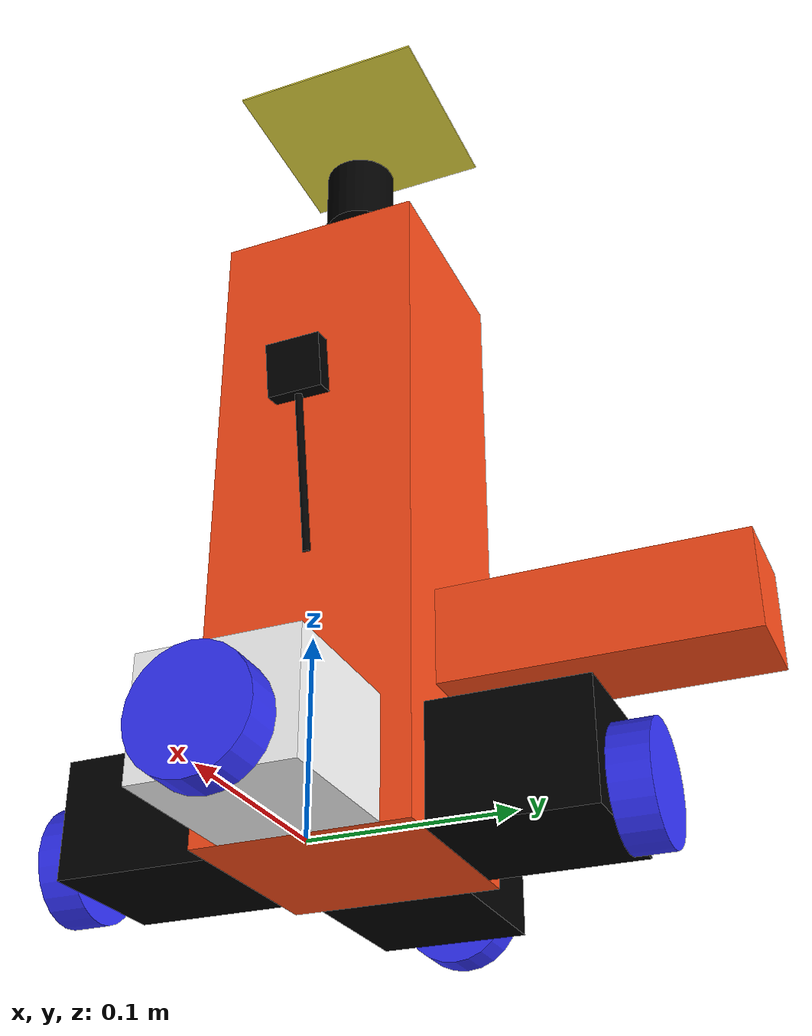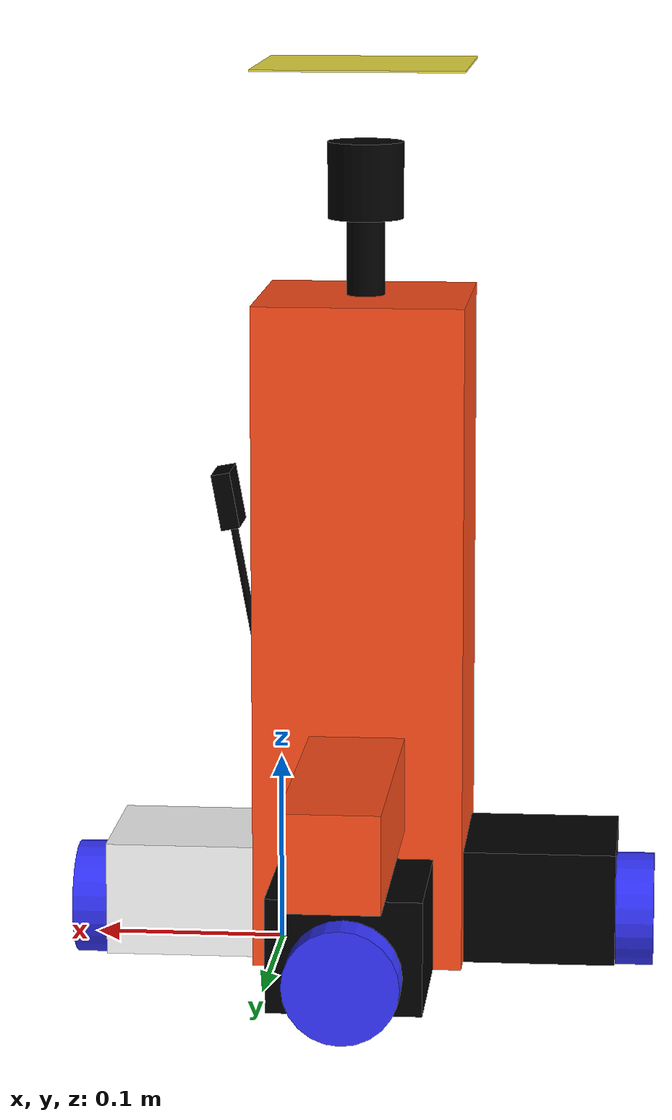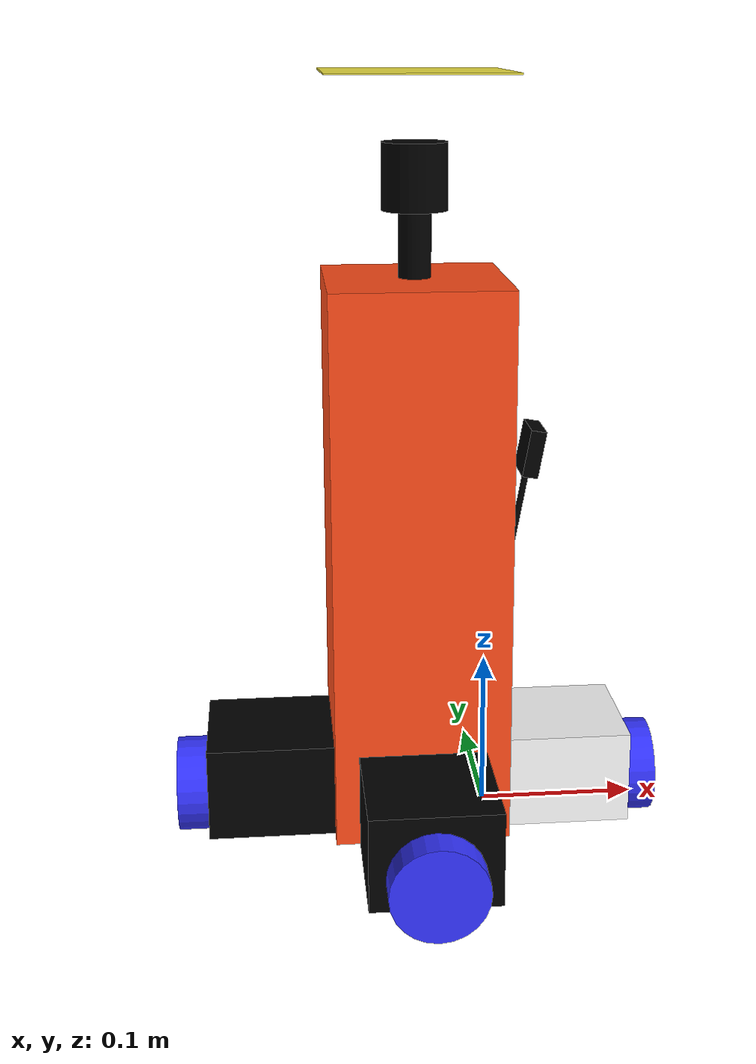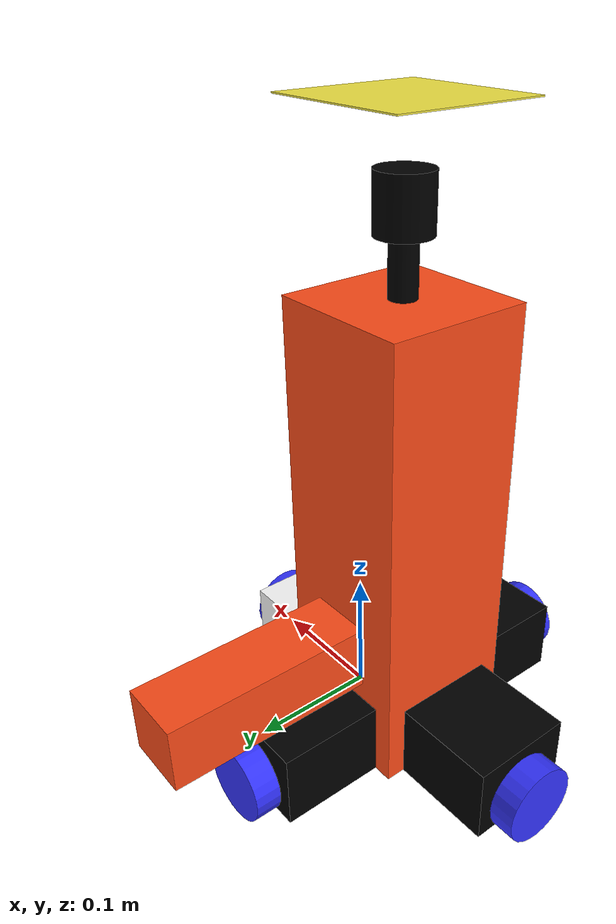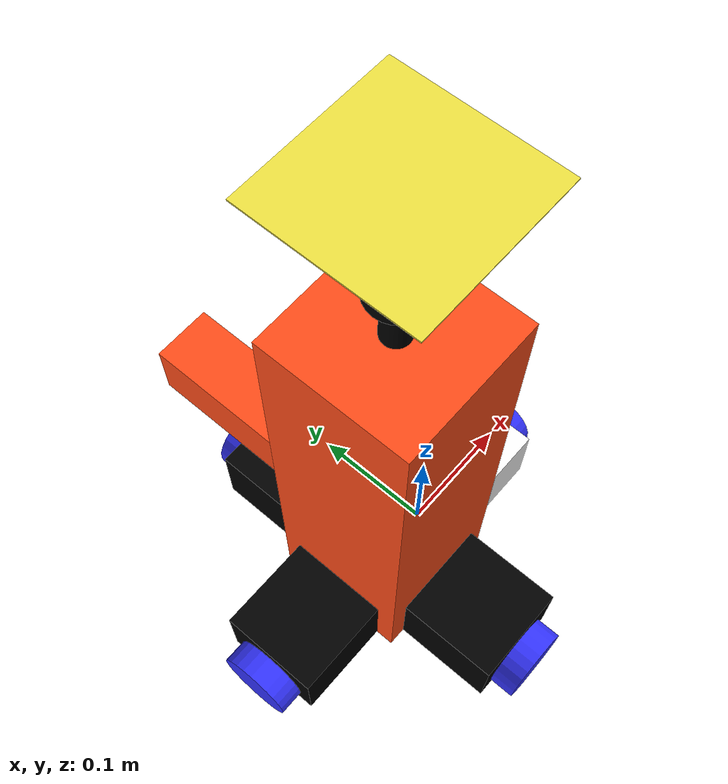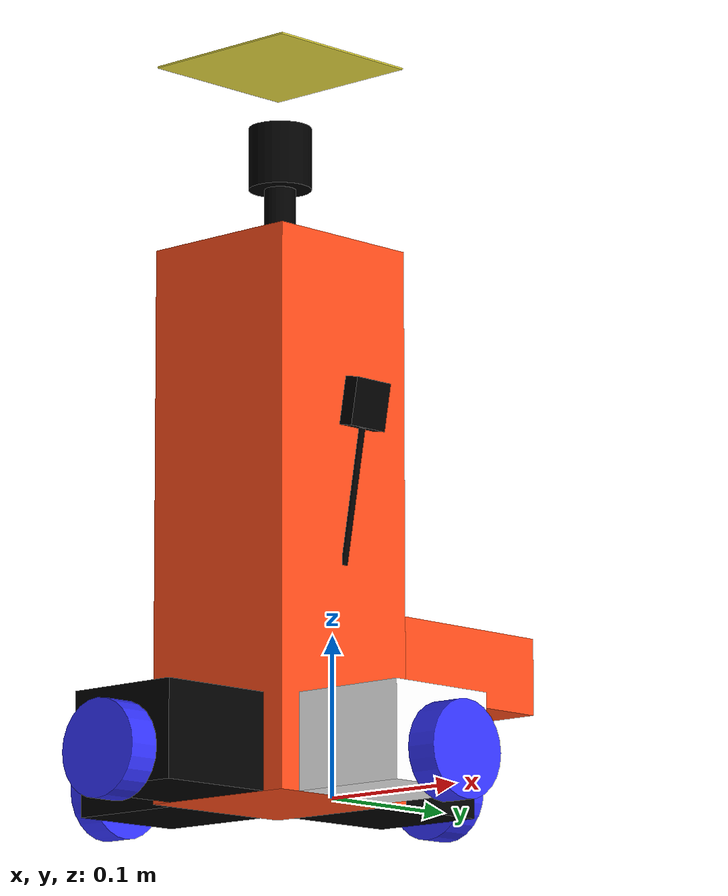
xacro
<?xml version="1.0"?>
<robot xmlns:xacro="http://www.ros.org/wiki/xacro"  name="robot">

    <xacro:include filename="robot_core.xacro" />
    <xacro:include filename="lidar.xacro"/>
    <xacro:include filename="ros2_control.xacro" />
    <xacro:include filename="gazebo_control.xacro" />
    <xacro:include filename="camera.xacro" />
    <xacro:include filename="imu.xacro" />
</robot>

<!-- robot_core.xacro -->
<robot xmlns:xacro="http://www.ros.org/wiki/xacro" >

    <xacro:include filename="inertial_macros.xacro" />

    <material name="white">
        <color rgba="1 1 1 1" />
    </material>

    <material name="orange">
        <color rgba="1 0.3 0.1 1"/>
    </material>

    <material name="blue">
        <color rgba="0.2 0.2 1 1"/>
    </material>

    <material name="black">
        <color rgba="0 0 0 1"/>
    </material>

    <material name="red">
        <color rgba="1 0 0 1"/>
    </material>

    <link name="base_link">
    </link>

    <!--Chassis-->

    <joint name= "chassis_joint" type="fixed">
        <parent link="base_link"/>
        <child link="chassis"/>
        <origin xyz="-0.1 0 0"/>
    </joint>

    <link name="base_footprint">
    </link>

    <joint name= "base_footprint_joint" type="fixed">
        <parent link="base_footprint"/>
        <child link="base_link"/>
        <origin xyz="0 0 0"/>
    </joint>

    <link name="chassis">
        <visual>
            <origin xyz="0.055 0 0.175"/>
            <geometry>
                <box size="0.11 0.11 0.35"/>
            </geometry>
            <material name="orange"/>
        </visual>
        <collision>
            <origin xyz="0.055 0 0.175"/>
            <geometry>
                <box size="0.11 0.11 0.35"/>
            </geometry>
        </collision>
        <xacro:inertial_box mass="0.5" x="0.11" y="0.11" z="0.35">
            <origin xyz="0.055 0 0.175" rpy="0 0 0"/>
        </xacro:inertial_box>
    </link>

    <gazebo reference="chassis">
        <material>Gazebo/Orange</material>
    </gazebo>
    <!--bloc aruco-->

    <joint name= "bloc_aruco_joint" type="fixed">
        <parent link="chassis"/>
        <child link="bloc_aruco"/>
        <origin xyz="0.055 0 0"/>
    </joint>

    <link name="bloc_aruco">
        <visual>
            <origin xyz="0 0 0.47"/>
            <geometry>
                <box size="0.11 0.11 0.001"/>
            </geometry>
        </visual>
        <collision>
            <origin xyz="0 0 0.47"/>
            <geometry>
                <box size="0.11 0.11 0.001"/>
            </geometry>
        </collision>
        <xacro:inertial_box mass="0.5" x="0.11" y="0.11" z="0.001">
            <origin xyz="0 0 0.47" rpy="0 0 0"/>
        </xacro:inertial_box>
    </link>

    <gazebo reference="bloc_aruco" link="">
        <visual>
        <material>
            <script>
                <uri>$(find ezbot_robot)/media/materials/scripts</uri>
                <uri>$(find ezbot_robot)/media/materials/textures</uri>
                <name>arucoMat</name>
            </script>
        </material>
        </visual>
    </gazebo>
    <!--bloc avant-->

    <joint name= "bloc_avant_joint" type="fixed">
        <parent link="chassis"/>
        <child link="bloc_avant"/>
        <origin xyz="0.11 0 0"/>
    </joint>

    <link name="bloc_avant">
        <visual>
            <origin xyz="0.04 0 0.03"/>
            <geometry>
                <box size="0.08 0.08 0.06"/>
            </geometry>
            <material name="white"/>
        </visual>
        <collision>
            <origin xyz="0.04 0 0.03"/>
            <geometry>
                <box size="0.08 0.08 0.06"/>
            </geometry>
        </collision>
        <xacro:inertial_box mass="0.5" x="0.08" y="0.08" z="0.06">
            <origin xyz="0.04 0 0.03" rpy="0 0 0"/>
        </xacro:inertial_box>
    </link>

    <gazebo reference="bloc_avant">
        <material>Gazebo/White</material>
    </gazebo>

    <!--bloc arriere-->

    <joint name= "bloc_arriere_joint" type="fixed">
        <parent link="chassis"/>
        <child link="bloc_arriere"/>
        <origin xyz="-0.08 0 0"/>
    </joint>

    <link name="bloc_arriere">
        <visual>
            <origin xyz="0.04 0 0.03"/>
            <geometry>
                <box size="0.08 0.08 0.06"/>
            </geometry>
            <material name="black"/>
        </visual>
        <collision>
            <origin xyz="0.04 0 0.03"/>
            <geometry>
                <box size="0.08 0.08 0.06"/>
            </geometry>
        </collision>
        <xacro:inertial_box mass="0.05" x="0.08" y="0.08" z="0.06">
            <origin xyz="0.04 0 0.03" rpy="0 0 0"/>
        </xacro:inertial_box>
    </link>

    <gazebo reference="bloc_arriere">
        <material>Gazebo/Black</material>
    </gazebo>

    <!--bloc gauche-->

    <joint name= "bloc_gauche_joint" type="fixed">
        <parent link="chassis"/>
        <child link="bloc_gauche"/>
        <origin xyz="0.015 0.095 0"/>
    </joint>

    <link name="bloc_gauche">
        <visual>
            <origin xyz="0.04 0 0.03"/>
            <geometry>
                <box size="0.08 0.08 0.06"/>
            </geometry>
            <material name="black"/>
        </visual>
        <collision>
            <origin xyz="0.04 0 0.03"/>
            <geometry>
                <box size="0.08 0.08 0.06"/>
            </geometry>
        </collision>
        <xacro:inertial_box mass="0.5" x="0.08" y="0.08" z="0.06">
            <origin xyz="0.04 0 0.03" rpy="0 0 0"/>
        </xacro:inertial_box>
    </link>

    <gazebo reference="bloc_gauche">
        <material>Gazebo/Black</material>
    </gazebo>

    <!--bloc droit-->

    <joint name= "bloc_droit_joint" type="fixed">
        <parent link="chassis"/>
        <child link="bloc_droit"/>
        <origin xyz="0.015 -0.095 0"/>
    </joint>

    <link name="bloc_droit">
        <visual>
            <origin xyz="0.04 0 0.03"/>
            <geometry>
                <box size="0.08 0.08 0.06"/>
            </geometry>
            <material name="black"/>
        </visual>
        <collision>
            <origin xyz="0.04 0 0.03"/>
            <geometry>
                <box size="0.08 0.08 0.06"/>
            </geometry>
        </collision>
        <xacro:inertial_box mass="0.5" x="0.08" y="0.08" z="0.06">
            <origin xyz="0.04 0 0.03" rpy="0 0 0"/>
        </xacro:inertial_box>
    </link>

    <gazebo reference="bloc_droit">
        <material>Gazebo/Black</material>
    </gazebo>

    <!--roue droite-->

    <joint name= "roue_droite_joint" type="continuous">
        <parent link="bloc_droit"/>
        <child link="roue_droite"/>
        <origin xyz="0.04 -0.05 0.02" rpy="-${pi/2} 0 0"/>
        <axis xyz="0 0 1"/>
    </joint>

    <link name='roue_droite'>
        <visual>
            <material name="blue"/>
            <geometry>
                <cylinder radius="0.03" length="0.02"/>
            </geometry>
        </visual>
        <collision>
            <geometry>
                <cylinder radius="0.03" length="0.02"/>
            </geometry>
        </collision>
        <xacro:inertial_cylinder mass="0.1" radius="0.03" length="0.02">
            <origin xyz="0 0 0" rpy="0 0 0"/>
        </xacro:inertial_cylinder>
    </link>

    <gazebo reference="roue_droite">
        <material>Gazebo/Blue</material>
        <fdir1>1 0 0</fdir1>
        <mu1>0.9</mu1>
        <mu2>0.1</mu2>
        <collision>
            <surface>
                <contact>
                <ode>
                    <max_vel>0</max_vel>
                    <min_depth>0.02</min_depth>
                </ode>
                </contact>
            </surface>
        </collision>
    </gazebo>

    <!--roue gauche-->

    <joint name= "roue_gauche_joint" type="continuous">
        <parent link="bloc_gauche"/>
        <child link="roue_gauche"/>
        <origin xyz="0.04 0.05 0.02" rpy="-${pi/2} 0 0"/>
        <axis xyz="0 0 1"/>
    </joint>

    <link name='roue_gauche'>
        <visual>
            <material name="blue"/>
            <geometry>
                <cylinder radius="0.03" length="0.02"/>
            </geometry>
        </visual>
        <collision>
            <geometry>
                <cylinder radius="0.03" length="0.02"/>
            </geometry>
        </collision>
        <xacro:inertial_cylinder mass="0.1" radius="0.03" length="0.02">
            <origin xyz="0 0 0" rpy="0 0 0"/>
        </xacro:inertial_cylinder>
    </link>

    <gazebo reference="roue_gauche">
        <material>Gazebo/Blue</material>
        <fdir1>1 0 0</fdir1>
        <mu1>0.9</mu1>
        <mu2>0.1</mu2>
        <collision>
            <surface>
                <contact>
                <ode>
                    <max_vel>0</max_vel>

                    <min_depth>0.02</min_depth>
                </ode>
                </contact>
            </surface>
        </collision>
    </gazebo>

    <!--roue avant-->

    <joint name= "roue_avant_joint" type="continuous">
        <parent link="bloc_avant"/>
        <child link="roue_avant"/>
        <origin xyz="0.09 0 0.02" rpy="0 ${pi/2} 0"/>
        <axis xyz="0 0 1"/>
    </joint>

    <link name='roue_avant'>
        <visual>
            <material name="blue"/>
            <geometry>
                <cylinder radius="0.03" length="0.02"/>
            </geometry>
        </visual>
        <collision>
            <geometry>
                <cylinder radius="0.03" length="0.02"/>
            </geometry>
        </collision>
        <xacro:inertial_cylinder mass="0.1" radius="0.03" length="0.02">
            <origin xyz="0 0 0" rpy="0 0 0"/>
        </xacro:inertial_cylinder>
    </link>

    <gazebo reference="roue_avant">
        <material>Gazebo/Blue</material>
        <fdir1>1 0 0</fdir1>
        <mu1>0.9</mu1>
        <mu2>0.1</mu2>
        <collision>
            <surface>
                <contact>
                <ode>
                    <max_vel>0</max_vel>
                    <min_depth>0.02</min_depth>
                </ode>
                </contact>
            </surface>
        </collision>
    </gazebo>

    <!--roue arriere-->

    <joint name= "roue_arriere_joint" type="continuous">
        <parent link="bloc_arriere"/>
        <child link="roue_arriere"/>
        <origin xyz="-0.01 0 0.02" rpy="0 ${pi/2} 0"/>
        <axis xyz="0 0 1"/>
    </joint>

    <link name='roue_arriere'>
        <visual>
            <material name="blue"/>
            <geometry>
                <cylinder radius="0.03" length="0.02"/>
            </geometry>
        </visual>
        <collision>
            <geometry>
                <cylinder radius="0.03" length="0.02"/>
            </geometry>
        </collision>
        <xacro:inertial_cylinder mass="0.1" radius="0.03" length="0.02">
            <origin xyz="0 0 0" rpy="0 0 0"/>
        </xacro:inertial_cylinder>
    </link>

    <gazebo reference="roue_arriere">
        <material>Gazebo/Blue</material>
        <fdir1>1 0 0</fdir1>
        <mu1>0.9</mu1>
        <mu2>0.1</mu2>
        <collision>
            <surface>
                <contact>
                <ode>
                    <max_vel>0</max_vel>
                    <min_depth>0.02</min_depth>
                </ode>
                </contact>
            </surface>
        </collision>
    </gazebo>

    <link name="renverseur_de_panneaux">
        <visual>
            <origin xyz="0.055 0.11 0.10"/>
            <geometry>
                <box size="0.05 0.20 0.05"/>
            </geometry>
            <material name="orange"/>
        </visual>
        <collision>
            <origin xyz="0.055 0.11 0.10"/>
            <geometry>
                <box size="0.05 0.20 0.05"/>
            </geometry>
        </collision>
        <xacro:inertial_box mass="0.5" x="0.05" y="0.15" z="0.05">
            <origin xyz="0.055 0 0.10" rpy="0 0 0"/>
        </xacro:inertial_box>
    </link>

    <joint name= "renverseur_de_panneaux_joint" type="fixed">
        <parent link="chassis"/>
        <child link="renverseur_de_panneaux"/>
    </joint>

    <gazebo reference="renverseur_de_panneaux">
        <material>Gazebo/Purple</material>
    </gazebo>

</robot>

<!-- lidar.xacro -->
<robot xmlns:xacro="http://www.ros.org/wiki/xacro" >

    <joint name="laser_joint" type="fixed">
        <parent link="chassis"/>
        <child link="base_laser"/>
        <origin xyz="0.055 0 0.41" rpy="0 0 0"/>
    </joint>
    <joint name="ldlidar_node" type="fixed">
        <parent link="base_laser"/>
        <child link="ldlidar_base"/>
        <origin xyz="0 0 0" rpy="0 0 0"/>
    </joint>

    <link name="ldlidar_base">
    </link>

    <joint name="ldlidar_link_node" type="fixed">
        <parent link="base_laser"/>
        <child link="ldlidar_link"/>
        <origin xyz="0 0 0" rpy="0 0 0"/>
    </joint>

    <link name="ldlidar_link">
    </link>

    <link name="base_laser">
        <visual>
            <geometry>
                <cylinder radius="0.02" length="0.04"/>
            </geometry>
            <material name="black"/>
        </visual>
        <visual>
            <origin xyz="0 0 -0.05"/>
            <geometry>
                <cylinder radius="0.01" length="0.1"/>
            </geometry>
            <material name="black"/>
        </visual>
        <collision>
            <geometry>
                <cylinder radius="0.02" length="0.04"/>
            </geometry>
        </collision>
        <xacro:inertial_cylinder mass="0.1" length="0.04" radius="0.05">
            <origin xyz="0 0 0" rpy="0 0 0"/>
        </xacro:inertial_cylinder>
    </link>

    <gazebo reference="base_laser">
        <material>Gazebo/Black</material>

        <sensor name="laser" type="ray">
            <pose> 0.055 0 0.03 0 0 0 </pose>
            <visualize>true</visualize>
            <update_rate>10</update_rate>
            <ray>
                <scan>
                    <horizontal>
                        <samples>450</samples>
                        <min_angle>-3.14</min_angle>
                        <max_angle>3.14</max_angle>
                    </horizontal>
                </scan>
                <range>
                    <min>0.05</min>
                    <max>12</max>
                </range>
            </ray>
            <plugin name="laser_controller" filename="libgazebo_ros_ray_sensor.so">
                <ros>
                    <argument>~/out:=lidar/ldlidar_node/scan</argument>
                </ros>
                <output_type>sensor_msgs/LaserScan</output_type>
                <frame_name>base_laser</frame_name>
            </plugin>
        </sensor>
    </gazebo>

</robot>

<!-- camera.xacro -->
<robot xmlns:xacro="http://www.ros.org/wiki/xacro" >

    <joint name="camera_joint" type="fixed">
        <parent link="chassis"/>
        <child link="camera_link"/>
        <origin xyz="0.128 0 0.241" rpy="0 0.18 0"/>
    </joint>

    <link name="camera_link">
        <visual>
            <geometry>
                <box size="0.010 0.03 0.03"/>
            </geometry>
            <material name="black"/>
        </visual>
        <visual>
            <origin xyz="0 0 -0.05"/>
            <geometry>
                <cylinder radius="0.002" length="0.1"/>
            </geometry>
            <material name="black"/>
        </visual>
    </link>

    <joint name="camera_optical_joint" type="fixed">
        <parent link="camera_link"/>
        <child link="camera_link_optical"/>
        <origin xyz="0 0 0" rpy="${-pi/2} 0 ${-pi/2}"/>
    </joint>

    <link name="camera_link_optical"></link>

    <gazebo reference="camera_link">
        <material>Gazebo/Black</material>

        <sensor name="camera" type="camera">
            <pose> 0 0 0 0 0 0 </pose>
            <visualize>true</visualize>
            <update_rate>10</update_rate>
            <camera>
                <horizontal_fov>1.089</horizontal_fov>
                <image>
                    <format>R8G8B8</format>
                    <width>1280</width>
                    <height>1280</height>
                </image>
                <clip>
                    <near>0.05</near>
                    <far>8.0</far>
                </clip>
            </camera>
            <plugin name="camera_controller" filename="libgazebo_ros_camera.so">
                <frame_name>camera_link_optical</frame_name>
            </plugin>
        </sensor>
    </gazebo>

</robot>

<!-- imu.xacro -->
<robot xmlns:xacro="http://www.ros.org/wiki/xacro" >

    <joint name="imu_joint" type="fixed">
        <parent link="chassis"/>
        <child link="imu"/>
        <origin xyz="0.055 0 0.175" rpy="0 0 0"/>
    </joint>

    <link name="imu">
        <visual>
            <geometry>
                <box size="0.03 0.03 0.03"/>
            </geometry>
            <material name="black"/>
        </visual>
    </link>

    <gazebo reference="imu">
        <material>Gazebo/Black</material>

        <gravity>true</gravity>
        <sensor name="imu_sensor" type="imu">
            <always_on>true</always_on>
            <update_rate>100</update_rate>
            <visualize>true</visualize>
            <topic>__default_topic__</topic>
            <plugin filename="libgazebo_ros_imu_sensor.so" name="imu_plugin">
                <topicName>imu</topicName>
                <bodyName>imu</bodyName>
                <updateRateHZ>10.0</updateRateHZ>
                <gaussianNoise>0.0</gaussianNoise>
                <xyzOffset>0 0 0</xyzOffset>
                <rpyOffset>0 0 0</rpyOffset>
                <frameName>imu</frameName>
                <initialOrientationAsReference>false</initialOrientationAsReference>
            </plugin>
            <pose>0 0 0 0 0 0</pose>
            <imu>
            <angular_velocity>
            <x>
              <noise type="gaussian">
                <mean>0.0</mean>
                <stddev>2e-4</stddev>
                <bias_mean>0.0000075</bias_mean>
                <bias_stddev>0.0000008</bias_stddev>
              </noise>
            </x>
            <y>
              <noise type="gaussian">
                <mean>0.0</mean>
                <stddev>2e-4</stddev>
                <bias_mean>0.0000075</bias_mean>
                <bias_stddev>0.0000008</bias_stddev>
              </noise>
            </y>
            <z>
              <noise type="gaussian">
                <mean>0.0</mean>
                <stddev>2e-4</stddev>
                <bias_mean>0.0000075</bias_mean>
                <bias_stddev>0.0000008</bias_stddev>
              </noise>
            </z>
            </angular_velocity>
            <linear_acceleration>
            <x>
              <noise type="gaussian">
                <mean>0.0</mean>
                <stddev>1.7e-2</stddev>
                <bias_mean>0.1</bias_mean>
                <bias_stddev>0.001</bias_stddev>
              </noise>
            </x>
            <y>
              <noise type="gaussian">
                <mean>0.0</mean>
                <stddev>1.7e-2</stddev>
                <bias_mean>0.1</bias_mean>
                <bias_stddev>0.001</bias_stddev>
              </noise>
            </y>
            <z>
              <noise type="gaussian">
                <mean>0.0</mean>
                <stddev>1.7e-2</stddev>
                <bias_mean>0.1</bias_mean>
                <bias_stddev>0.001</bias_stddev>
              </noise>
            </z>
            </linear_acceleration>
            </imu>

        </sensor>
    </gazebo>

</robot>
